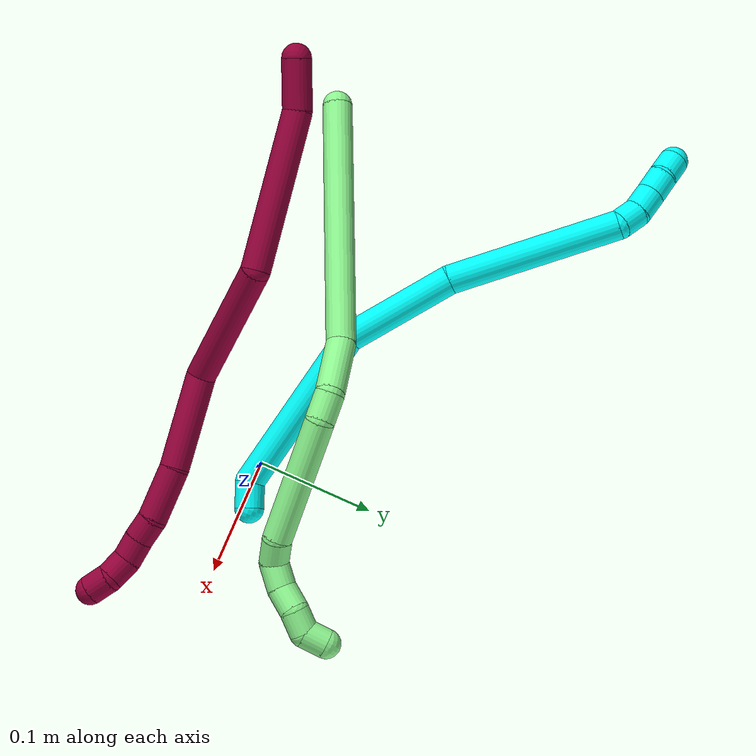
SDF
<sdf version="1.7">
 <world name="default">
  <model name="photoneo_s_sensor">
   <static>1</static>
   <pose>0 0 2 1.57079 1.57079 3.14159</pose>
   <link name="link">
    <inertial><mass>0.1</mass></inertial>
    <sensor name="sensor" type="depth">
     <update_rate>30</update_rate>
     <camera>
      <horizontal_fov>1.22</horizontal_fov>
      <image><width>1920</width><height>1200</height><format>B8G8R8</format></image>
      <clip><near>0.1</near><far>4</far></clip>
      <depth_camera><output>points</output></depth_camera>
     </camera>
     <plugin name="camera_plugin" filename="libgazebo_ros_depth_camera.so">
      <baseline>0.2</baseline>
      <alwaysOn>1</alwaysOn>
      <updateRate>0.0</updateRate>
      <cameraName>camera_ir</cameraName>
      <imageTopicName>/camera/color/image_raw</imageTopicName>
      <cameraInfoTopicName>/camera/color/camera_info</cameraInfoTopicName>
      <depthImageTopicName>/camera/depth/image_raw</depthImageTopicName>
      <depthImageCameraInfoTopicName>/camera/depth/camera_info</depthImageCameraInfoTopicName>
      <pointCloudTopicName>/camera/depth/points</pointCloudTopicName>
      <frameName>fr_optical</frameName>
      <pointCloudCutoff>0.1</pointCloudCutoff>
      <pointCloudCutoffMax>2.0</pointCloudCutoffMax>
      <distortionK1>0</distortionK1>
      <distortionK2>0</distortionK2>
      <distortionK3>0</distortionK3>
      <distortionT1>0</distortionT1>
      <distortionT2>0</distortionT2>
      <CxPrime>0</CxPrime>
      <Cx>0</Cx>
      <Cy>0</Cy>
      <focalLength>0</focalLength>
      <hackBaseline>0</hackBaseline>
     </plugin>
    </sensor>
   </link>
  </model>
  <model name="bin">
   <static>1</static>
   <link name="bottom">
    <collision name="collision-bottom">
     <pose>0 0 -0.01 0 -0 0</pose>
     <geometry><box><size>0.8 0.6 0.02</size></box></geometry>
     <surface>
      <friction><ode><mu>100</mu><mu2>100</mu2></ode></friction>
      <contact><collide_bitmask>65535</collide_bitmask></contact>
     </surface>
    </collision>
   </link>
   <link name="west_wall">
    <collision name="collision-west_wall">
     <pose>-0.41 0 0.1 0 -0 0</pose>
     <geometry><box><size>0.02 0.6 0.2</size></box></geometry>
     <surface>
      <friction><ode><mu>100</mu><mu2>100</mu2></ode></friction>
      <contact><collide_bitmask>65535</collide_bitmask></contact>
     </surface>
    </collision>
   </link>
   <link name="east_wall">
    <collision name="collision-east_wall">
     <pose>0.41 0 0.1 0 -0 0</pose>
     <geometry><box><size>0.02 0.6 0.2</size></box></geometry>
     <surface>
      <friction><ode><mu>100</mu><mu2>100</mu2></ode></friction>
      <contact><collide_bitmask>65535</collide_bitmask></contact>
     </surface>
    </collision>
   </link>
   <link name="south_wall">
    <collision name="collision-south_wall">
     <pose>0 -0.31 0.1 0 -0 0</pose>
     <geometry><box><size>0.8 0.02 0.2</size></box></geometry>
     <surface>
      <friction><ode><mu>100</mu><mu2>100</mu2></ode></friction>
      <contact><collide_bitmask>65535</collide_bitmask></contact>
     </surface>
    </collision>
   </link>
   <link name="north_wall">
    <collision name="collision-north_wall">
     <pose>0 0.31 0.1 0 -0 0</pose>
     <geometry><box><size>0.8 0.02 0.2</size></box></geometry>
     <surface>
      <friction><ode><mu>100</mu><mu2>100</mu2></ode></friction>
      <contact><collide_bitmask>65535</collide_bitmask></contact>
     </surface>
    </collision>
   </link>
  </model>
  <model name="3">
   <static>0</static>
   <link name="3">
    <collision name="collision-cylinder-e_1_1_4">
     <pose>0.003706 -0.002853 0.010705 0.260473 0.322814 0.042646</pose>
     <geometry><cylinder><radius>0.0125</radius><length>0.023364</length></cylinder></geometry>
     <surface>
      <friction><ode><mu>1.16</mu><mu2>1.16</mu2><slip1>0</slip1><slip2>0</slip2></ode></friction>
      <contact><ode><kp>1e+06</kp><kd>1</kd><max_vel>0</max_vel><min_depth>0.001</min_depth></ode></contact>
     </surface>
    </collision>
    <visual name="visual-cylinder-e_1_1_4">
     <pose>0.003706 -0.002853 0.010705 0.260473 0.322814 0.042646</pose>
     <geometry><cylinder><radius>0.0125</radius><length>0.023364</length></cylinder></geometry>
     <material><ambient>0.003922 1 0.996078 1</ambient></material>
    </visual>
    <collision name="collision-cylinder-e_2_4_5">
     <pose>-0.002954 0.006583 0.09408 -0.167521 -0.13973 0.01175</pose>
     <geometry><cylinder><radius>0.0125</radius><length>0.148854</length></cylinder></geometry>
     <surface>
      <friction><ode><mu>1.16</mu><mu2>1.16</mu2><slip1>0</slip1><slip2>0</slip2></ode></friction>
      <contact><ode><kp>1e+06</kp><kd>1</kd><max_vel>0</max_vel><min_depth>0.001</min_depth></ode></contact>
     </surface>
    </collision>
    <visual name="visual-cylinder-e_2_4_5">
     <pose>-0.002954 0.006583 0.09408 -0.167521 -0.13973 0.01175</pose>
     <geometry><cylinder><radius>0.0125</radius><length>0.148854</length></cylinder></geometry>
     <material><ambient>0.003922 1 0.996078 1</ambient></material>
    </visual>
    <collision name="collision-cylinder-e_3_5_6">
     <pose>-0.039246 0.031713 0.206046 -0.315835 -0.560122 0.091539</pose>
     <geometry><cylinder><radius>0.0125</radius><length>0.097596</length></cylinder></geometry>
     <surface>
      <friction><ode><mu>1.16</mu><mu2>1.16</mu2><slip1>0</slip1><slip2>0</slip2></ode></friction>
      <contact><ode><kp>1e+06</kp><kd>1</kd><max_vel>0</max_vel><min_depth>0.001</min_depth></ode></contact>
     </surface>
    </collision>
    <visual name="visual-cylinder-e_3_5_6">
     <pose>-0.039246 0.031713 0.206046 -0.315835 -0.560122 0.091539</pose>
     <geometry><cylinder><radius>0.0125</radius><length>0.097596</length></cylinder></geometry>
     <material><ambient>0.003922 1 0.996078 1</ambient></material>
    </visual>
    <collision name="collision-cylinder-e_4_6_7">
     <pose>-0.114657 0.070023 0.294694 -0.476424 -0.727842 0.184451</pose>
     <geometry><cylinder><radius>0.0125</radius><length>0.148769</length></cylinder></geometry>
     <surface>
      <friction><ode><mu>1.16</mu><mu2>1.16</mu2><slip1>0</slip1><slip2>0</slip2></ode></friction>
      <contact><ode><kp>1e+06</kp><kd>1</kd><max_vel>0</max_vel><min_depth>0.001</min_depth></ode></contact>
     </surface>
    </collision>
    <visual name="visual-cylinder-e_4_6_7">
     <pose>-0.114657 0.070023 0.294694 -0.476424 -0.727842 0.184451</pose>
     <geometry><cylinder><radius>0.0125</radius><length>0.148769</length></cylinder></geometry>
     <material><ambient>0.003922 1 0.996078 1</ambient></material>
    </visual>
    <collision name="collision-cylinder-e_5_7_8">
     <pose>-0.170047 0.093233 0.35186 0.28144 -0.62797 -0.091934</pose>
     <geometry><cylinder><radius>0.0125</radius><length>0.020103</length></cylinder></geometry>
     <surface>
      <friction><ode><mu>1.16</mu><mu2>1.16</mu2><slip1>0</slip1><slip2>0</slip2></ode></friction>
      <contact><ode><kp>1e+06</kp><kd>1</kd><max_vel>0</max_vel><min_depth>0.001</min_depth></ode></contact>
     </surface>
    </collision>
    <visual name="visual-cylinder-e_5_7_8">
     <pose>-0.170047 0.093233 0.35186 0.28144 -0.62797 -0.091934</pose>
     <geometry><cylinder><radius>0.0125</radius><length>0.020103</length></cylinder></geometry>
     <material><ambient>0.003922 1 0.996078 1</ambient></material>
    </visual>
    <collision name="collision-cylinder-e_6_8_9">
     <pose>-0.179395 0.087767 0.369006 0.331015 -0.335673 -0.056587</pose>
     <geometry><cylinder><radius>0.0125</radius><length>0.020903</length></cylinder></geometry>
     <surface>
      <friction><ode><mu>1.16</mu><mu2>1.16</mu2><slip1>0</slip1><slip2>0</slip2></ode></friction>
      <contact><ode><kp>1e+06</kp><kd>1</kd><max_vel>0</max_vel><min_depth>0.001</min_depth></ode></contact>
     </surface>
    </collision>
    <visual name="visual-cylinder-e_6_8_9">
     <pose>-0.179395 0.087767 0.369006 0.331015 -0.335673 -0.056587</pose>
     <geometry><cylinder><radius>0.0125</radius><length>0.020903</length></cylinder></geometry>
     <material><ambient>0.003922 1 0.996078 1</ambient></material>
    </visual>
    <collision name="collision-cylinder-e_7_9_10">
     <pose>-0.185909 0.081615 0.387534 0.309885 -0.307917 -0.048469</pose>
     <geometry><cylinder><radius>0.0125</radius><length>0.020265</length></cylinder></geometry>
     <surface>
      <friction><ode><mu>1.16</mu><mu2>1.16</mu2><slip1>0</slip1><slip2>0</slip2></ode></friction>
      <contact><ode><kp>1e+06</kp><kd>1</kd><max_vel>0</max_vel><min_depth>0.001</min_depth></ode></contact>
     </surface>
    </collision>
    <visual name="visual-cylinder-e_7_9_10">
     <pose>-0.185909 0.081615 0.387534 0.309885 -0.307917 -0.048469</pose>
     <geometry><cylinder><radius>0.0125</radius><length>0.020265</length></cylinder></geometry>
     <material><ambient>0.003922 1 0.996078 1</ambient></material>
    </visual>
    <collision name="collision-cylinder-e_8_10_2">
     <pose>-0.192683 0.073928 0.404809 0.530808 -0.376507 -0.103475</pose>
     <geometry><cylinder><radius>0.0125</radius><length>0.020147</length></cylinder></geometry>
     <surface>
      <friction><ode><mu>1.16</mu><mu2>1.16</mu2><slip1>0</slip1><slip2>0</slip2></ode></friction>
      <contact><ode><kp>1e+06</kp><kd>1</kd><max_vel>0</max_vel><min_depth>0.001</min_depth></ode></contact>
     </surface>
    </collision>
    <visual name="visual-cylinder-e_8_10_2">
     <pose>-0.192683 0.073928 0.404809 0.530808 -0.376507 -0.103475</pose>
     <geometry><cylinder><radius>0.0125</radius><length>0.020147</length></cylinder></geometry>
     <material><ambient>0.003922 1 0.996078 1</ambient></material>
    </visual>
    <collision name="collision-sphere-2">
     <pose>-0.196387 0.069186 0.412888 0 -0 0</pose>
     <geometry><sphere><radius>0.0125</radius></sphere></geometry>
     <surface>
      <friction><ode><mu>1.16</mu><mu2>1.16</mu2><slip1>0</slip1><slip2>0</slip2></ode></friction>
      <contact><ode><kp>1e+06</kp><kd>1</kd><max_vel>0</max_vel><min_depth>0.001</min_depth></ode></contact>
     </surface>
    </collision>
    <visual name="visual-sphere-2">
     <pose>-0.196387 0.069186 0.412888 0 -0 0</pose>
     <geometry><sphere><radius>0.0125</radius></sphere></geometry>
     <material><ambient>0.003922 1 0.996078 1</ambient></material>
    </visual>
    <collision name="collision-sphere-10">
     <pose>-0.188979 0.07867 0.39673 0 -0 0</pose>
     <geometry><sphere><radius>0.0125</radius></sphere></geometry>
     <surface>
      <friction><ode><mu>1.16</mu><mu2>1.16</mu2><slip1>0</slip1><slip2>0</slip2></ode></friction>
      <contact><ode><kp>1e+06</kp><kd>1</kd><max_vel>0</max_vel><min_depth>0.001</min_depth></ode></contact>
     </surface>
    </collision>
    <visual name="visual-sphere-10">
     <pose>-0.188979 0.07867 0.39673 0 -0 0</pose>
     <geometry><sphere><radius>0.0125</radius></sphere></geometry>
     <material><ambient>0.003922 1 0.996078 1</ambient></material>
    </visual>
    <collision name="collision-sphere-9">
     <pose>-0.182838 0.084559 0.378339 0 -0 0</pose>
     <geometry><sphere><radius>0.0125</radius></sphere></geometry>
     <surface>
      <friction><ode><mu>1.16</mu><mu2>1.16</mu2><slip1>0</slip1><slip2>0</slip2></ode></friction>
      <contact><ode><kp>1e+06</kp><kd>1</kd><max_vel>0</max_vel><min_depth>0.001</min_depth></ode></contact>
     </surface>
    </collision>
    <visual name="visual-sphere-9">
     <pose>-0.182838 0.084559 0.378339 0 -0 0</pose>
     <geometry><sphere><radius>0.0125</radius></sphere></geometry>
     <material><ambient>0.003922 1 0.996078 1</ambient></material>
    </visual>
    <collision name="collision-sphere-4">
     <pose>0.007412 -0.005706 0.02141 0 -0 0</pose>
     <geometry><sphere><radius>0.0125</radius></sphere></geometry>
     <surface>
      <friction><ode><mu>1.16</mu><mu2>1.16</mu2><slip1>0</slip1><slip2>0</slip2></ode></friction>
      <contact><ode><kp>1e+06</kp><kd>1</kd><max_vel>0</max_vel><min_depth>0.001</min_depth></ode></contact>
     </surface>
    </collision>
    <visual name="visual-sphere-4">
     <pose>0.007412 -0.005706 0.02141 0 -0 0</pose>
     <geometry><sphere><radius>0.0125</radius></sphere></geometry>
     <material><ambient>0.003922 1 0.996078 1</ambient></material>
    </visual>
    <collision name="collision-sphere-1">
     <geometry><sphere><radius>0.0125</radius></sphere></geometry>
     <surface>
      <friction><ode><mu>1.16</mu><mu2>1.16</mu2><slip1>0</slip1><slip2>0</slip2></ode></friction>
      <contact><ode><kp>1e+06</kp><kd>1</kd><max_vel>0</max_vel><min_depth>0.001</min_depth></ode></contact>
     </surface>
    </collision>
    <visual name="visual-sphere-1">
     <geometry><sphere><radius>0.0125</radius></sphere></geometry>
     <material><ambient>0.003922 1 0.996078 1</ambient></material>
    </visual>
    <collision name="collision-sphere-8">
     <pose>-0.175952 0.090974 0.359673 0 -0 0</pose>
     <geometry><sphere><radius>0.0125</radius></sphere></geometry>
     <surface>
      <friction><ode><mu>1.16</mu><mu2>1.16</mu2><slip1>0</slip1><slip2>0</slip2></ode></friction>
      <contact><ode><kp>1e+06</kp><kd>1</kd><max_vel>0</max_vel><min_depth>0.001</min_depth></ode></contact>
     </surface>
    </collision>
    <visual name="visual-sphere-8">
     <pose>-0.175952 0.090974 0.359673 0 -0 0</pose>
     <geometry><sphere><radius>0.0125</radius></sphere></geometry>
     <material><ambient>0.003922 1 0.996078 1</ambient></material>
    </visual>
    <collision name="collision-sphere-5">
     <pose>-0.01332 0.018871 0.166749 0 -0 0</pose>
     <geometry><sphere><radius>0.0125</radius></sphere></geometry>
     <surface>
      <friction><ode><mu>1.16</mu><mu2>1.16</mu2><slip1>0</slip1><slip2>0</slip2></ode></friction>
      <contact><ode><kp>1e+06</kp><kd>1</kd><max_vel>0</max_vel><min_depth>0.001</min_depth></ode></contact>
     </surface>
    </collision>
    <visual name="visual-sphere-5">
     <pose>-0.01332 0.018871 0.166749 0 -0 0</pose>
     <geometry><sphere><radius>0.0125</radius></sphere></geometry>
     <material><ambient>0.003922 1 0.996078 1</ambient></material>
    </visual>
    <collision name="collision-sphere-6">
     <pose>-0.065172 0.044554 0.245342 0 -0 0</pose>
     <geometry><sphere><radius>0.0125</radius></sphere></geometry>
     <surface>
      <friction><ode><mu>1.16</mu><mu2>1.16</mu2><slip1>0</slip1><slip2>0</slip2></ode></friction>
      <contact><ode><kp>1e+06</kp><kd>1</kd><max_vel>0</max_vel><min_depth>0.001</min_depth></ode></contact>
     </surface>
    </collision>
    <visual name="visual-sphere-6">
     <pose>-0.065172 0.044554 0.245342 0 -0 0</pose>
     <geometry><sphere><radius>0.0125</radius></sphere></geometry>
     <material><ambient>0.003922 1 0.996078 1</ambient></material>
    </visual>
    <collision name="collision-sphere-7">
     <pose>-0.164142 0.095492 0.344046 0 -0 0</pose>
     <geometry><sphere><radius>0.0125</radius></sphere></geometry>
     <surface>
      <friction><ode><mu>1.16</mu><mu2>1.16</mu2><slip1>0</slip1><slip2>0</slip2></ode></friction>
      <contact><ode><kp>1e+06</kp><kd>1</kd><max_vel>0</max_vel><min_depth>0.001</min_depth></ode></contact>
     </surface>
    </collision>
    <visual name="visual-sphere-7">
     <pose>-0.164142 0.095492 0.344046 0 -0 0</pose>
     <geometry><sphere><radius>0.0125</radius></sphere></geometry>
     <material><ambient>0.003922 1 0.996078 1</ambient></material>
    </visual>
    <inertial>
     <pose>-0.072117 0.042555 0.218001 0 -0 0</pose>
     <mass>0.5</mass>
     <inertia>
      <ixx>0.000592</ixx>
      <ixy>0</ixy>
      <ixz>0</ixz>
      <iyy>0.000676</iyy>
      <iyz>0</iyz>
      <izz>0.000141</izz>
     </inertia>
    </inertial>
   </link>
   <pose>0.038619 0.006443 0.013934 1.55263 -0.335064 -1.56424</pose>
  </model>
  <model name="8">
   <static>0</static>
   <link name="8">
    <collision name="collision-cylinder-e_1_1_4">
     <pose>0.017761 0.007852 0.009365 -0.697743 0.968101 -0.377934</pose>
     <geometry><cylinder><radius>0.0125</radius><length>0.04312</length></cylinder></geometry>
     <surface>
      <friction><ode><mu>1.16</mu><mu2>1.16</mu2><slip1>0</slip1><slip2>0</slip2></ode></friction>
      <contact><ode><kp>1e+06</kp><kd>1</kd><max_vel>0</max_vel><min_depth>0.001</min_depth></ode></contact>
     </surface>
    </collision>
    <visual name="visual-cylinder-e_1_1_4">
     <pose>0.017761 0.007852 0.009365 -0.697743 0.968101 -0.377934</pose>
     <geometry><cylinder><radius>0.0125</radius><length>0.04312</length></cylinder></geometry>
     <material><ambient>0.584314 0 0.227451 1</ambient></material>
    </visual>
    <collision name="collision-cylinder-e_2_4_5">
     <pose>0.08894 0.022753 0.059716 -0.170319 0.909292 -0.083405</pose>
     <geometry><cylinder><radius>0.0125</radius><length>0.135395</length></cylinder></geometry>
     <surface>
      <friction><ode><mu>1.16</mu><mu2>1.16</mu2><slip1>0</slip1><slip2>0</slip2></ode></friction>
      <contact><ode><kp>1e+06</kp><kd>1</kd><max_vel>0</max_vel><min_depth>0.001</min_depth></ode></contact>
     </surface>
    </collision>
    <visual name="visual-cylinder-e_2_4_5">
     <pose>0.08894 0.022753 0.059716 -0.170319 0.909292 -0.083405</pose>
     <geometry><cylinder><radius>0.0125</radius><length>0.135395</length></cylinder></geometry>
     <material><ambient>0.584314 0 0.227451 1</ambient></material>
    </visual>
    <collision name="collision-cylinder-e_3_5_6">
     <pose>0.198563 0.022499 0.102645 1.31063 1.43713 1.18363</pose>
     <geometry><cylinder><radius>0.0125</radius><length>0.113422</length></cylinder></geometry>
     <surface>
      <friction><ode><mu>1.16</mu><mu2>1.16</mu2><slip1>0</slip1><slip2>0</slip2></ode></friction>
      <contact><ode><kp>1e+06</kp><kd>1</kd><max_vel>0</max_vel><min_depth>0.001</min_depth></ode></contact>
     </surface>
    </collision>
    <visual name="visual-cylinder-e_3_5_6">
     <pose>0.198563 0.022499 0.102645 1.31063 1.43713 1.18363</pose>
     <geometry><cylinder><radius>0.0125</radius><length>0.113422</length></cylinder></geometry>
     <material><ambient>0.584314 0 0.227451 1</ambient></material>
    </visual>
    <collision name="collision-cylinder-e_4_6_7">
     <pose>0.286349 0.018449 0.129461 -0.13008 0.899555 -0.062868</pose>
     <geometry><cylinder><radius>0.0125</radius><length>0.080661</length></cylinder></geometry>
     <surface>
      <friction><ode><mu>1.16</mu><mu2>1.16</mu2><slip1>0</slip1><slip2>0</slip2></ode></friction>
      <contact><ode><kp>1e+06</kp><kd>1</kd><max_vel>0</max_vel><min_depth>0.001</min_depth></ode></contact>
     </surface>
    </collision>
    <visual name="visual-cylinder-e_4_6_7">
     <pose>0.286349 0.018449 0.129461 -0.13008 0.899555 -0.062868</pose>
     <geometry><cylinder><radius>0.0125</radius><length>0.080661</length></cylinder></geometry>
     <material><ambient>0.584314 0 0.227451 1</ambient></material>
    </visual>
    <collision name="collision-cylinder-e_5_7_8">
     <pose>0.337469 0.020503 0.166247 0.100353 1.021 0.056231</pose>
     <geometry><cylinder><radius>0.0125</radius><length>0.045833</length></cylinder></geometry>
     <surface>
      <friction><ode><mu>1.16</mu><mu2>1.16</mu2><slip1>0</slip1><slip2>0</slip2></ode></friction>
      <contact><ode><kp>1e+06</kp><kd>1</kd><max_vel>0</max_vel><min_depth>0.001</min_depth></ode></contact>
     </surface>
    </collision>
    <visual name="visual-cylinder-e_5_7_8">
     <pose>0.337469 0.020503 0.166247 0.100353 1.021 0.056231</pose>
     <geometry><cylinder><radius>0.0125</radius><length>0.045833</length></cylinder></geometry>
     <material><ambient>0.584314 0 0.227451 1</ambient></material>
    </visual>
    <collision name="collision-cylinder-e_6_8_9">
     <pose>0.36619 0.016849 0.181819 0.590963 1.12342 0.378545</pose>
     <geometry><cylinder><radius>0.0125</radius><length>0.020368</length></cylinder></geometry>
     <surface>
      <friction><ode><mu>1.16</mu><mu2>1.16</mu2><slip1>0</slip1><slip2>0</slip2></ode></friction>
      <contact><ode><kp>1e+06</kp><kd>1</kd><max_vel>0</max_vel><min_depth>0.001</min_depth></ode></contact>
     </surface>
    </collision>
    <visual name="visual-cylinder-e_6_8_9">
     <pose>0.36619 0.016849 0.181819 0.590963 1.12342 0.378545</pose>
     <geometry><cylinder><radius>0.0125</radius><length>0.020368</length></cylinder></geometry>
     <material><ambient>0.584314 0 0.227451 1</ambient></material>
    </visual>
    <collision name="collision-cylinder-e_7_9_10">
     <pose>0.384405 0.01271 0.190062 0.35208 1.07515 0.211293</pose>
     <geometry><cylinder><radius>0.0125</radius><length>0.020538</length></cylinder></geometry>
     <surface>
      <friction><ode><mu>1.16</mu><mu2>1.16</mu2><slip1>0</slip1><slip2>0</slip2></ode></friction>
      <contact><ode><kp>1e+06</kp><kd>1</kd><max_vel>0</max_vel><min_depth>0.001</min_depth></ode></contact>
     </surface>
    </collision>
    <visual name="visual-cylinder-e_7_9_10">
     <pose>0.384405 0.01271 0.190062 0.35208 1.07515 0.211293</pose>
     <geometry><cylinder><radius>0.0125</radius><length>0.020538</length></cylinder></geometry>
     <material><ambient>0.584314 0 0.227451 1</ambient></material>
    </visual>
    <collision name="collision-cylinder-e_8_10_11">
     <pose>0.400329 0.006981 0.201107 0.559409 0.735056 0.220288</pose>
     <geometry><cylinder><radius>0.0125</radius><length>0.020552</length></cylinder></geometry>
     <surface>
      <friction><ode><mu>1.16</mu><mu2>1.16</mu2><slip1>0</slip1><slip2>0</slip2></ode></friction>
      <contact><ode><kp>1e+06</kp><kd>1</kd><max_vel>0</max_vel><min_depth>0.001</min_depth></ode></contact>
     </surface>
    </collision>
    <visual name="visual-cylinder-e_8_10_11">
     <pose>0.400329 0.006981 0.201107 0.559409 0.735056 0.220288</pose>
     <geometry><cylinder><radius>0.0125</radius><length>0.020552</length></cylinder></geometry>
     <material><ambient>0.584314 0 0.227451 1</ambient></material>
    </visual>
    <collision name="collision-cylinder-e_9_11_2">
     <pose>0.414965 -0.002868 0.210302 1.13052 0.878971 0.579643</pose>
     <geometry><cylinder><radius>0.0125</radius><length>0.020113</length></cylinder></geometry>
     <surface>
      <friction><ode><mu>1.16</mu><mu2>1.16</mu2><slip1>0</slip1><slip2>0</slip2></ode></friction>
      <contact><ode><kp>1e+06</kp><kd>1</kd><max_vel>0</max_vel><min_depth>0.001</min_depth></ode></contact>
     </surface>
    </collision>
    <visual name="visual-cylinder-e_9_11_2">
     <pose>0.414965 -0.002868 0.210302 1.13052 0.878971 0.579643</pose>
     <geometry><cylinder><radius>0.0125</radius><length>0.020113</length></cylinder></geometry>
     <material><ambient>0.584314 0 0.227451 1</ambient></material>
    </visual>
    <collision name="collision-sphere-2">
     <pose>0.422709 -0.008671 0.213036 0 -0 0</pose>
     <geometry><sphere><radius>0.0125</radius></sphere></geometry>
     <surface>
      <friction><ode><mu>1.16</mu><mu2>1.16</mu2><slip1>0</slip1><slip2>0</slip2></ode></friction>
      <contact><ode><kp>1e+06</kp><kd>1</kd><max_vel>0</max_vel><min_depth>0.001</min_depth></ode></contact>
     </surface>
    </collision>
    <visual name="visual-sphere-2">
     <pose>0.422709 -0.008671 0.213036 0 -0 0</pose>
     <geometry><sphere><radius>0.0125</radius></sphere></geometry>
     <material><ambient>0.584314 0 0.227451 1</ambient></material>
    </visual>
    <collision name="collision-sphere-11">
     <pose>0.407221 0.002936 0.207568 0 -0 0</pose>
     <geometry><sphere><radius>0.0125</radius></sphere></geometry>
     <surface>
      <friction><ode><mu>1.16</mu><mu2>1.16</mu2><slip1>0</slip1><slip2>0</slip2></ode></friction>
      <contact><ode><kp>1e+06</kp><kd>1</kd><max_vel>0</max_vel><min_depth>0.001</min_depth></ode></contact>
     </surface>
    </collision>
    <visual name="visual-sphere-11">
     <pose>0.407221 0.002936 0.207568 0 -0 0</pose>
     <geometry><sphere><radius>0.0125</radius></sphere></geometry>
     <material><ambient>0.584314 0 0.227451 1</ambient></material>
    </visual>
    <collision name="collision-sphere-10">
     <pose>0.393438 0.011026 0.194646 0 -0 0</pose>
     <geometry><sphere><radius>0.0125</radius></sphere></geometry>
     <surface>
      <friction><ode><mu>1.16</mu><mu2>1.16</mu2><slip1>0</slip1><slip2>0</slip2></ode></friction>
      <contact><ode><kp>1e+06</kp><kd>1</kd><max_vel>0</max_vel><min_depth>0.001</min_depth></ode></contact>
     </surface>
    </collision>
    <visual name="visual-sphere-10">
     <pose>0.393438 0.011026 0.194646 0 -0 0</pose>
     <geometry><sphere><radius>0.0125</radius></sphere></geometry>
     <material><ambient>0.584314 0 0.227451 1</ambient></material>
    </visual>
    <collision name="collision-sphere-9">
     <pose>0.375372 0.014395 0.185478 0 -0 0</pose>
     <geometry><sphere><radius>0.0125</radius></sphere></geometry>
     <surface>
      <friction><ode><mu>1.16</mu><mu2>1.16</mu2><slip1>0</slip1><slip2>0</slip2></ode></friction>
      <contact><ode><kp>1e+06</kp><kd>1</kd><max_vel>0</max_vel><min_depth>0.001</min_depth></ode></contact>
     </surface>
    </collision>
    <visual name="visual-sphere-9">
     <pose>0.375372 0.014395 0.185478 0 -0 0</pose>
     <geometry><sphere><radius>0.0125</radius></sphere></geometry>
     <material><ambient>0.584314 0 0.227451 1</ambient></material>
    </visual>
    <collision name="collision-sphere-4">
     <pose>0.035522 0.015704 0.018731 0 -0 0</pose>
     <geometry><sphere><radius>0.0125</radius></sphere></geometry>
     <surface>
      <friction><ode><mu>1.16</mu><mu2>1.16</mu2><slip1>0</slip1><slip2>0</slip2></ode></friction>
      <contact><ode><kp>1e+06</kp><kd>1</kd><max_vel>0</max_vel><min_depth>0.001</min_depth></ode></contact>
     </surface>
    </collision>
    <visual name="visual-sphere-4">
     <pose>0.035522 0.015704 0.018731 0 -0 0</pose>
     <geometry><sphere><radius>0.0125</radius></sphere></geometry>
     <material><ambient>0.584314 0 0.227451 1</ambient></material>
    </visual>
    <collision name="collision-sphere-1">
     <geometry><sphere><radius>0.0125</radius></sphere></geometry>
     <surface>
      <friction><ode><mu>1.16</mu><mu2>1.16</mu2><slip1>0</slip1><slip2>0</slip2></ode></friction>
      <contact><ode><kp>1e+06</kp><kd>1</kd><max_vel>0</max_vel><min_depth>0.001</min_depth></ode></contact>
     </surface>
    </collision>
    <visual name="visual-sphere-1">
     <geometry><sphere><radius>0.0125</radius></sphere></geometry>
     <material><ambient>0.584314 0 0.227451 1</ambient></material>
    </visual>
    <collision name="collision-sphere-8">
     <pose>0.357008 0.019304 0.178161 0 -0 0</pose>
     <geometry><sphere><radius>0.0125</radius></sphere></geometry>
     <surface>
      <friction><ode><mu>1.16</mu><mu2>1.16</mu2><slip1>0</slip1><slip2>0</slip2></ode></friction>
      <contact><ode><kp>1e+06</kp><kd>1</kd><max_vel>0</max_vel><min_depth>0.001</min_depth></ode></contact>
     </surface>
    </collision>
    <visual name="visual-sphere-8">
     <pose>0.357008 0.019304 0.178161 0 -0 0</pose>
     <geometry><sphere><radius>0.0125</radius></sphere></geometry>
     <material><ambient>0.584314 0 0.227451 1</ambient></material>
    </visual>
    <collision name="collision-sphere-5">
     <pose>0.142358 0.029802 0.100701 0 -0 0</pose>
     <geometry><sphere><radius>0.0125</radius></sphere></geometry>
     <surface>
      <friction><ode><mu>1.16</mu><mu2>1.16</mu2><slip1>0</slip1><slip2>0</slip2></ode></friction>
      <contact><ode><kp>1e+06</kp><kd>1</kd><max_vel>0</max_vel><min_depth>0.001</min_depth></ode></contact>
     </surface>
    </collision>
    <visual name="visual-sphere-5">
     <pose>0.142358 0.029802 0.100701 0 -0 0</pose>
     <geometry><sphere><radius>0.0125</radius></sphere></geometry>
     <material><ambient>0.584314 0 0.227451 1</ambient></material>
    </visual>
    <collision name="collision-sphere-6">
     <pose>0.254768 0.015196 0.104589 0 -0 0</pose>
     <geometry><sphere><radius>0.0125</radius></sphere></geometry>
     <surface>
      <friction><ode><mu>1.16</mu><mu2>1.16</mu2><slip1>0</slip1><slip2>0</slip2></ode></friction>
      <contact><ode><kp>1e+06</kp><kd>1</kd><max_vel>0</max_vel><min_depth>0.001</min_depth></ode></contact>
     </surface>
    </collision>
    <visual name="visual-sphere-6">
     <pose>0.254768 0.015196 0.104589 0 -0 0</pose>
     <geometry><sphere><radius>0.0125</radius></sphere></geometry>
     <material><ambient>0.584314 0 0.227451 1</ambient></material>
    </visual>
    <collision name="collision-sphere-7">
     <pose>0.31793 0.021703 0.154333 0 -0 0</pose>
     <geometry><sphere><radius>0.0125</radius></sphere></geometry>
     <surface>
      <friction><ode><mu>1.16</mu><mu2>1.16</mu2><slip1>0</slip1><slip2>0</slip2></ode></friction>
      <contact><ode><kp>1e+06</kp><kd>1</kd><max_vel>0</max_vel><min_depth>0.001</min_depth></ode></contact>
     </surface>
    </collision>
    <visual name="visual-sphere-7">
     <pose>0.31793 0.021703 0.154333 0 -0 0</pose>
     <geometry><sphere><radius>0.0125</radius></sphere></geometry>
     <material><ambient>0.584314 0 0.227451 1</ambient></material>
    </visual>
    <inertial>
     <pose>0.211641 0.018178 0.108325 0 -0 0</pose>
     <mass>0.5</mass>
     <inertia>
      <ixx>0.000214</ixx>
      <ixy>0</ixy>
      <ixz>0</ixz>
      <iyy>0.000406</iyy>
      <iyz>0</iyz>
      <izz>-0.000343</izz>
     </inertia>
    </inertial>
   </link>
   <pose>-0.318233 -0.105433 0.107453 -0.003602 0.581587 0.05805</pose>
  </model>
  <model name="13">
   <static>0</static>
   <link name="13">
    <collision name="collision-cylinder-e_1_1_4">
     <pose>0.095529 0.041922 -0.024375 -2.09746 1.10106 -1.63557</pose>
     <geometry><cylinder><radius>0.0125</radius><length>0.214266</length></cylinder></geometry>
     <surface>
      <friction><ode><mu>1.16</mu><mu2>1.16</mu2><slip1>0</slip1><slip2>0</slip2></ode></friction>
      <contact><ode><kp>1e+06</kp><kd>1</kd><max_vel>0</max_vel><min_depth>0.001</min_depth></ode></contact>
     </surface>
    </collision>
    <visual name="visual-cylinder-e_1_1_4">
     <pose>0.095529 0.041922 -0.024375 -2.09746 1.10106 -1.63557</pose>
     <geometry><cylinder><radius>0.0125</radius><length>0.214266</length></cylinder></geometry>
     <material><ambient>0.564706 0.984314 0.572549 1</ambient></material>
    </visual>
    <collision name="collision-cylinder-e_2_4_5">
     <pose>0.213769 0.093467 -0.047167 -1.40767 1.16523 -1.01996</pose>
     <geometry><cylinder><radius>0.0125</radius><length>0.049431</length></cylinder></geometry>
     <surface>
      <friction><ode><mu>1.16</mu><mu2>1.16</mu2><slip1>0</slip1><slip2>0</slip2></ode></friction>
      <contact><ode><kp>1e+06</kp><kd>1</kd><max_vel>0</max_vel><min_depth>0.001</min_depth></ode></contact>
     </surface>
    </collision>
    <visual name="visual-cylinder-e_2_4_5">
     <pose>0.213769 0.093467 -0.047167 -1.40767 1.16523 -1.01996</pose>
     <geometry><cylinder><radius>0.0125</radius><length>0.049431</length></cylinder></geometry>
     <material><ambient>0.564706 0.984314 0.572549 1</ambient></material>
    </visual>
    <collision name="collision-cylinder-e_3_5_6">
     <pose>0.248393 0.103055 -0.047265 3.12144 1.43054 3.1184</pose>
     <geometry><cylinder><radius>0.0125</radius><length>0.024063</length></cylinder></geometry>
     <surface>
      <friction><ode><mu>1.16</mu><mu2>1.16</mu2><slip1>0</slip1><slip2>0</slip2></ode></friction>
      <contact><ode><kp>1e+06</kp><kd>1</kd><max_vel>0</max_vel><min_depth>0.001</min_depth></ode></contact>
     </surface>
    </collision>
    <visual name="visual-cylinder-e_3_5_6">
     <pose>0.248393 0.103055 -0.047265 3.12144 1.43054 3.1184</pose>
     <geometry><cylinder><radius>0.0125</radius><length>0.024063</length></cylinder></geometry>
     <material><ambient>0.564706 0.984314 0.572549 1</ambient></material>
    </visual>
    <collision name="collision-cylinder-e_4_6_7">
     <pose>0.307384 0.088369 -0.06818 2.49058 1.09634 2.13166</pose>
     <geometry><cylinder><radius>0.0125</radius><length>0.105847</length></cylinder></geometry>
     <surface>
      <friction><ode><mu>1.16</mu><mu2>1.16</mu2><slip1>0</slip1><slip2>0</slip2></ode></friction>
      <contact><ode><kp>1e+06</kp><kd>1</kd><max_vel>0</max_vel><min_depth>0.001</min_depth></ode></contact>
     </surface>
    </collision>
    <visual name="visual-cylinder-e_4_6_7">
     <pose>0.307384 0.088369 -0.06818 2.49058 1.09634 2.13166</pose>
     <geometry><cylinder><radius>0.0125</radius><length>0.105847</length></cylinder></geometry>
     <material><ambient>0.564706 0.984314 0.572549 1</ambient></material>
    </visual>
    <collision name="collision-cylinder-e_5_7_8">
     <pose>0.362645 0.069978 -0.094406 2.6506 0.801187 2.07311</pose>
     <geometry><cylinder><radius>0.0125</radius><length>0.02279</length></cylinder></geometry>
     <surface>
      <friction><ode><mu>1.16</mu><mu2>1.16</mu2><slip1>0</slip1><slip2>0</slip2></ode></friction>
      <contact><ode><kp>1e+06</kp><kd>1</kd><max_vel>0</max_vel><min_depth>0.001</min_depth></ode></contact>
     </surface>
    </collision>
    <visual name="visual-cylinder-e_5_7_8">
     <pose>0.362645 0.069978 -0.094406 2.6506 0.801187 2.07311</pose>
     <geometry><cylinder><radius>0.0125</radius><length>0.02279</length></cylinder></geometry>
     <material><ambient>0.564706 0.984314 0.572549 1</ambient></material>
    </visual>
    <collision name="collision-cylinder-e_6_8_9">
     <pose>0.379015 0.070597 -0.107738 -2.53947 0.816509 -1.89642</pose>
     <geometry><cylinder><radius>0.0125</radius><length>0.022468</length></cylinder></geometry>
     <surface>
      <friction><ode><mu>1.16</mu><mu2>1.16</mu2><slip1>0</slip1><slip2>0</slip2></ode></friction>
      <contact><ode><kp>1e+06</kp><kd>1</kd><max_vel>0</max_vel><min_depth>0.001</min_depth></ode></contact>
     </surface>
    </collision>
    <visual name="visual-cylinder-e_6_8_9">
     <pose>0.379015 0.070597 -0.107738 -2.53947 0.816509 -1.89642</pose>
     <geometry><cylinder><radius>0.0125</radius><length>0.022468</length></cylinder></geometry>
     <material><ambient>0.564706 0.984314 0.572549 1</ambient></material>
    </visual>
    <collision name="collision-cylinder-e_7_9_10">
     <pose>0.393284 0.081713 -0.11943 -2.2405 0.614364 -1.16087</pose>
     <geometry><cylinder><radius>0.0125</radius><length>0.021102</length></cylinder></geometry>
     <surface>
      <friction><ode><mu>1.16</mu><mu2>1.16</mu2><slip1>0</slip1><slip2>0</slip2></ode></friction>
      <contact><ode><kp>1e+06</kp><kd>1</kd><max_vel>0</max_vel><min_depth>0.001</min_depth></ode></contact>
     </surface>
    </collision>
    <visual name="visual-cylinder-e_7_9_10">
     <pose>0.393284 0.081713 -0.11943 -2.2405 0.614364 -1.16087</pose>
     <geometry><cylinder><radius>0.0125</radius><length>0.021102</length></cylinder></geometry>
     <material><ambient>0.564706 0.984314 0.572549 1</ambient></material>
    </visual>
    <collision name="collision-cylinder-e_8_10_11">
     <pose>0.405601 0.09197 -0.131777 -2.67795 0.673042 -1.95436</pose>
     <geometry><cylinder><radius>0.0125</radius><length>0.020003</length></cylinder></geometry>
     <surface>
      <friction><ode><mu>1.16</mu><mu2>1.16</mu2><slip1>0</slip1><slip2>0</slip2></ode></friction>
      <contact><ode><kp>1e+06</kp><kd>1</kd><max_vel>0</max_vel><min_depth>0.001</min_depth></ode></contact>
     </surface>
    </collision>
    <visual name="visual-cylinder-e_8_10_11">
     <pose>0.405601 0.09197 -0.131777 -2.67795 0.673042 -1.95436</pose>
     <geometry><cylinder><radius>0.0125</radius><length>0.020003</length></cylinder></geometry>
     <material><ambient>0.564706 0.984314 0.572549 1</ambient></material>
    </visual>
    <collision name="collision-cylinder-e_9_11_2">
     <pose>0.411843 0.101525 -0.146747 -2.49198 0.000781 -0.002319</pose>
     <geometry><cylinder><radius>0.0125</radius><length>0.02003</length></cylinder></geometry>
     <surface>
      <friction><ode><mu>1.16</mu><mu2>1.16</mu2><slip1>0</slip1><slip2>0</slip2></ode></friction>
      <contact><ode><kp>1e+06</kp><kd>1</kd><max_vel>0</max_vel><min_depth>0.001</min_depth></ode></contact>
     </surface>
    </collision>
    <visual name="visual-cylinder-e_9_11_2">
     <pose>0.411843 0.101525 -0.146747 -2.49198 0.000781 -0.002319</pose>
     <geometry><cylinder><radius>0.0125</radius><length>0.02003</length></cylinder></geometry>
     <material><ambient>0.564706 0.984314 0.572549 1</ambient></material>
    </visual>
    <collision name="collision-sphere-2">
     <pose>0.411851 0.107583 -0.154722 0 -0 0</pose>
     <geometry><sphere><radius>0.0125</radius></sphere></geometry>
     <surface>
      <friction><ode><mu>1.16</mu><mu2>1.16</mu2><slip1>0</slip1><slip2>0</slip2></ode></friction>
      <contact><ode><kp>1e+06</kp><kd>1</kd><max_vel>0</max_vel><min_depth>0.001</min_depth></ode></contact>
     </surface>
    </collision>
    <visual name="visual-sphere-2">
     <pose>0.411851 0.107583 -0.154722 0 -0 0</pose>
     <geometry><sphere><radius>0.0125</radius></sphere></geometry>
     <material><ambient>0.564706 0.984314 0.572549 1</ambient></material>
    </visual>
    <collision name="collision-sphere-11">
     <pose>0.411835 0.095467 -0.138771 0 -0 0</pose>
     <geometry><sphere><radius>0.0125</radius></sphere></geometry>
     <surface>
      <friction><ode><mu>1.16</mu><mu2>1.16</mu2><slip1>0</slip1><slip2>0</slip2></ode></friction>
      <contact><ode><kp>1e+06</kp><kd>1</kd><max_vel>0</max_vel><min_depth>0.001</min_depth></ode></contact>
     </surface>
    </collision>
    <visual name="visual-sphere-11">
     <pose>0.411835 0.095467 -0.138771 0 -0 0</pose>
     <geometry><sphere><radius>0.0125</radius></sphere></geometry>
     <material><ambient>0.564706 0.984314 0.572549 1</ambient></material>
    </visual>
    <collision name="collision-sphere-10">
     <pose>0.399366 0.088473 -0.124782 0 -0 0</pose>
     <geometry><sphere><radius>0.0125</radius></sphere></geometry>
     <surface>
      <friction><ode><mu>1.16</mu><mu2>1.16</mu2><slip1>0</slip1><slip2>0</slip2></ode></friction>
      <contact><ode><kp>1e+06</kp><kd>1</kd><max_vel>0</max_vel><min_depth>0.001</min_depth></ode></contact>
     </surface>
    </collision>
    <visual name="visual-sphere-10">
     <pose>0.399366 0.088473 -0.124782 0 -0 0</pose>
     <geometry><sphere><radius>0.0125</radius></sphere></geometry>
     <material><ambient>0.564706 0.984314 0.572549 1</ambient></material>
    </visual>
    <collision name="collision-sphere-9">
     <pose>0.387202 0.074954 -0.114078 0 -0 0</pose>
     <geometry><sphere><radius>0.0125</radius></sphere></geometry>
     <surface>
      <friction><ode><mu>1.16</mu><mu2>1.16</mu2><slip1>0</slip1><slip2>0</slip2></ode></friction>
      <contact><ode><kp>1e+06</kp><kd>1</kd><max_vel>0</max_vel><min_depth>0.001</min_depth></ode></contact>
     </surface>
    </collision>
    <visual name="visual-sphere-9">
     <pose>0.387202 0.074954 -0.114078 0 -0 0</pose>
     <geometry><sphere><radius>0.0125</radius></sphere></geometry>
     <material><ambient>0.564706 0.984314 0.572549 1</ambient></material>
    </visual>
    <collision name="collision-sphere-4">
     <pose>0.191058 0.083845 -0.048751 0 -0 0</pose>
     <geometry><sphere><radius>0.0125</radius></sphere></geometry>
     <surface>
      <friction><ode><mu>1.16</mu><mu2>1.16</mu2><slip1>0</slip1><slip2>0</slip2></ode></friction>
      <contact><ode><kp>1e+06</kp><kd>1</kd><max_vel>0</max_vel><min_depth>0.001</min_depth></ode></contact>
     </surface>
    </collision>
    <visual name="visual-sphere-4">
     <pose>0.191058 0.083845 -0.048751 0 -0 0</pose>
     <geometry><sphere><radius>0.0125</radius></sphere></geometry>
     <material><ambient>0.564706 0.984314 0.572549 1</ambient></material>
    </visual>
    <collision name="collision-sphere-1">
     <geometry><sphere><radius>0.0125</radius></sphere></geometry>
     <surface>
      <friction><ode><mu>1.16</mu><mu2>1.16</mu2><slip1>0</slip1><slip2>0</slip2></ode></friction>
      <contact><ode><kp>1e+06</kp><kd>1</kd><max_vel>0</max_vel><min_depth>0.001</min_depth></ode></contact>
     </surface>
    </collision>
    <visual name="visual-sphere-1">
     <geometry><sphere><radius>0.0125</radius></sphere></geometry>
     <material><ambient>0.564706 0.984314 0.572549 1</ambient></material>
    </visual>
    <collision name="collision-sphere-8">
     <pose>0.370829 0.06624 -0.101398 0 -0 0</pose>
     <geometry><sphere><radius>0.0125</radius></sphere></geometry>
     <surface>
      <friction><ode><mu>1.16</mu><mu2>1.16</mu2><slip1>0</slip1><slip2>0</slip2></ode></friction>
      <contact><ode><kp>1e+06</kp><kd>1</kd><max_vel>0</max_vel><min_depth>0.001</min_depth></ode></contact>
     </surface>
    </collision>
    <visual name="visual-sphere-8">
     <pose>0.370829 0.06624 -0.101398 0 -0 0</pose>
     <geometry><sphere><radius>0.0125</radius></sphere></geometry>
     <material><ambient>0.564706 0.984314 0.572549 1</ambient></material>
    </visual>
    <collision name="collision-sphere-5">
     <pose>0.236479 0.103089 -0.045584 0 -0 0</pose>
     <geometry><sphere><radius>0.0125</radius></sphere></geometry>
     <surface>
      <friction><ode><mu>1.16</mu><mu2>1.16</mu2><slip1>0</slip1><slip2>0</slip2></ode></friction>
      <contact><ode><kp>1e+06</kp><kd>1</kd><max_vel>0</max_vel><min_depth>0.001</min_depth></ode></contact>
     </surface>
    </collision>
    <visual name="visual-sphere-5">
     <pose>0.236479 0.103089 -0.045584 0 -0 0</pose>
     <geometry><sphere><radius>0.0125</radius></sphere></geometry>
     <material><ambient>0.564706 0.984314 0.572549 1</ambient></material>
    </visual>
    <collision name="collision-sphere-6">
     <pose>0.260306 0.103021 -0.048947 0 -0 0</pose>
     <geometry><sphere><radius>0.0125</radius></sphere></geometry>
     <surface>
      <friction><ode><mu>1.16</mu><mu2>1.16</mu2><slip1>0</slip1><slip2>0</slip2></ode></friction>
      <contact><ode><kp>1e+06</kp><kd>1</kd><max_vel>0</max_vel><min_depth>0.001</min_depth></ode></contact>
     </surface>
    </collision>
    <visual name="visual-sphere-6">
     <pose>0.260306 0.103021 -0.048947 0 -0 0</pose>
     <geometry><sphere><radius>0.0125</radius></sphere></geometry>
     <material><ambient>0.564706 0.984314 0.572549 1</ambient></material>
    </visual>
    <collision name="collision-sphere-7">
     <pose>0.354461 0.073717 -0.087413 0 -0 0</pose>
     <geometry><sphere><radius>0.0125</radius></sphere></geometry>
     <surface>
      <friction><ode><mu>1.16</mu><mu2>1.16</mu2><slip1>0</slip1><slip2>0</slip2></ode></friction>
      <contact><ode><kp>1e+06</kp><kd>1</kd><max_vel>0</max_vel><min_depth>0.001</min_depth></ode></contact>
     </surface>
    </collision>
    <visual name="visual-sphere-7">
     <pose>0.354461 0.073717 -0.087413 0 -0 0</pose>
     <geometry><sphere><radius>0.0125</radius></sphere></geometry>
     <material><ambient>0.564706 0.984314 0.572549 1</ambient></material>
    </visual>
    <inertial>
     <pose>0.22198 0.068429 -0.057152 0 -0 0</pose>
     <mass>0.5</mass>
     <inertia>
      <ixx>-0.000355</ixx>
      <ixy>0</ixy>
      <ixz>0</ixz>
      <iyy>0.000437</iyy>
      <iyz>0</iyz>
      <izz>-0.001162</izz>
     </inertia>
    </inertial>
   </link>
   <pose>-0.302598 -0.063486 0.019304 0.87058 -0.227779 -0.033766</pose>
  </model>
 </world>
</sdf>
